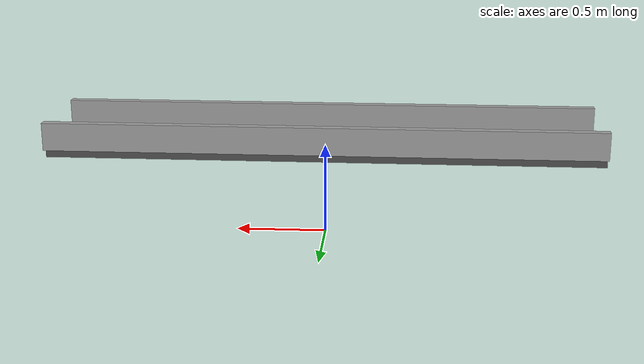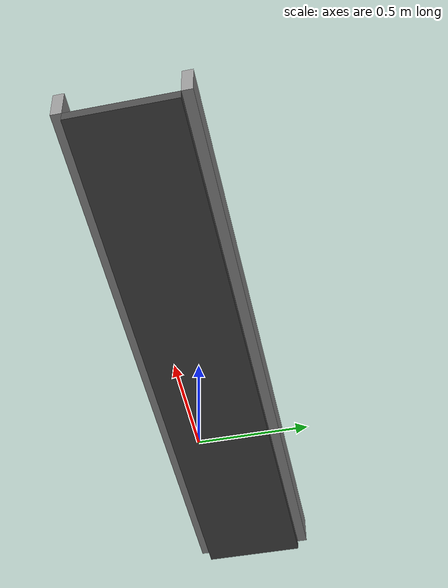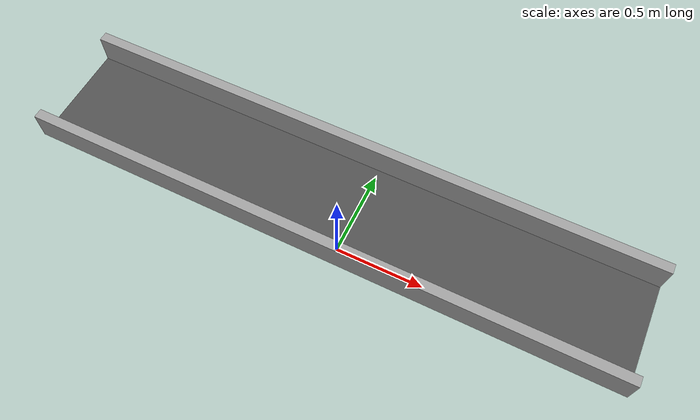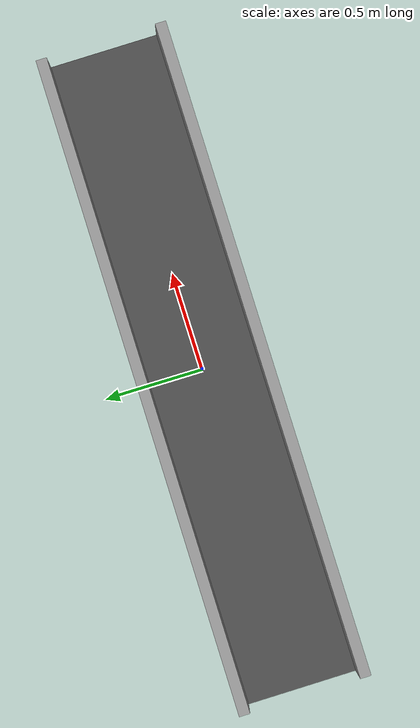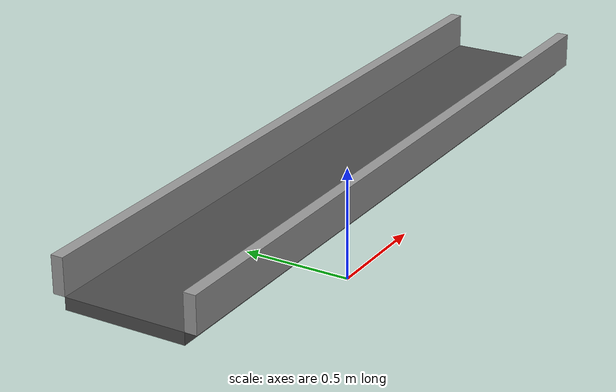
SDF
<?xml version="1.0"?>
<sdf version="1.6">
  <model name="conveyor_belt">
    <static>true</static>

    <!-- Belt base structure -->
    <link name="belt_base">
      <pose>0 0 0.5 0 0 0</pose>
      <collision name="belt_collision">
        <geometry>
          <box><size>3.0 0.5 0.05</size></box>
        </geometry>
      </collision>
      <visual name="belt_visual">
        <geometry>
          <box><size>3.0 0.5 0.05</size></box>
        </geometry>
        <material>
          <ambient>0.2 0.2 0.2 1</ambient>
          <diffuse>0.3 0.3 0.3 1</diffuse>
        </material>
      </visual>
    </link>

    <!-- Left side wall -->
    <link name="left_wall">
      <pose>0 0.275 0.6 0 0 0</pose>
      <collision name="left_wall_collision">
        <geometry>
          <box><size>3.0 0.05 0.15</size></box>
        </geometry>
      </collision>
      <visual name="left_wall_visual">
        <geometry>
          <box><size>3.0 0.05 0.15</size></box>
        </geometry>
        <material>
          <ambient>0.5 0.5 0.5 1</ambient>
          <diffuse>0.6 0.6 0.6 1</diffuse>
        </material>
      </visual>
    </link>

    <!-- Right side wall -->
    <link name="right_wall">
      <pose>0 -0.275 0.6 0 0 0</pose>
      <collision name="right_wall_collision">
        <geometry>
          <box><size>3.0 0.05 0.15</size></box>
        </geometry>
      </collision>
      <visual name="right_wall_visual">
        <geometry>
          <box><size>3.0 0.05 0.15</size></box>
        </geometry>
        <material>
          <ambient>0.5 0.5 0.5 1</ambient>
          <diffuse>0.6 0.6 0.6 1</diffuse>
        </material>
      </visual>
    </link>

    <!-- Belt surface plugin for movement -->
    <plugin name="conveyor_belt_plugin" filename="libgazebo_ros_conveyor_belt.so">
      <ros>
        <namespace>/conveyor</namespace>
        <remapping>conveyor_belt_control:=/conveyor_cmd</remapping>
      </ros>
      <link_name>belt_base</link_name>
      <belt_speed>0.5</belt_speed>
      <belt_direction>1 0 0</belt_direction>
    </plugin>
  </model>
</sdf>
